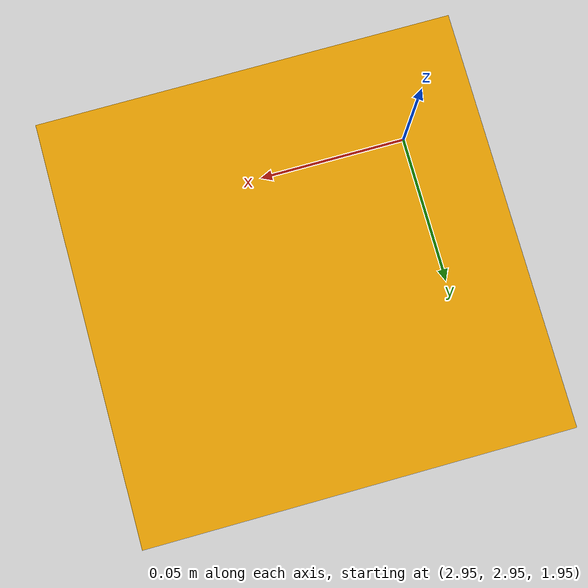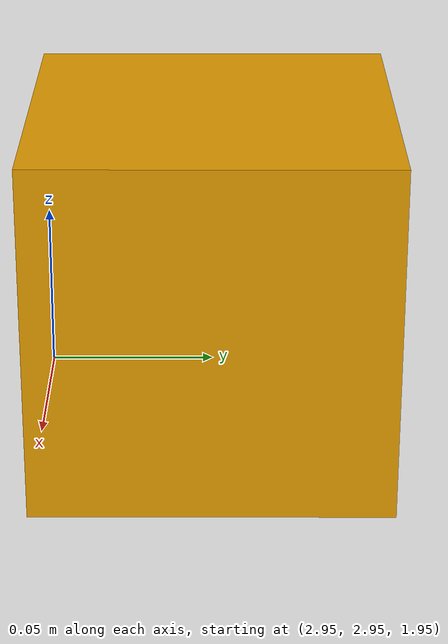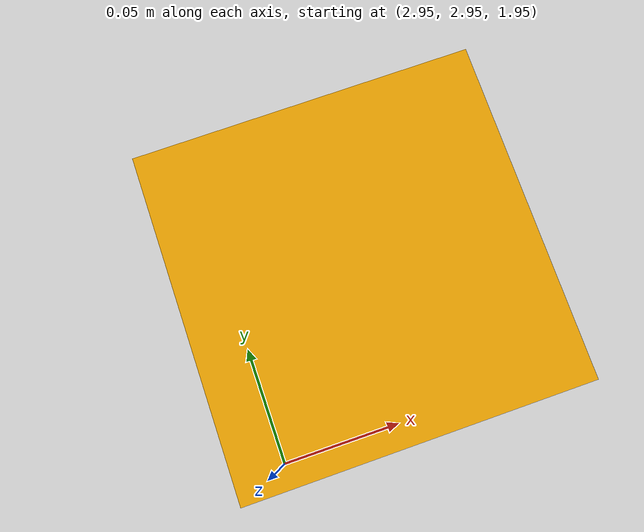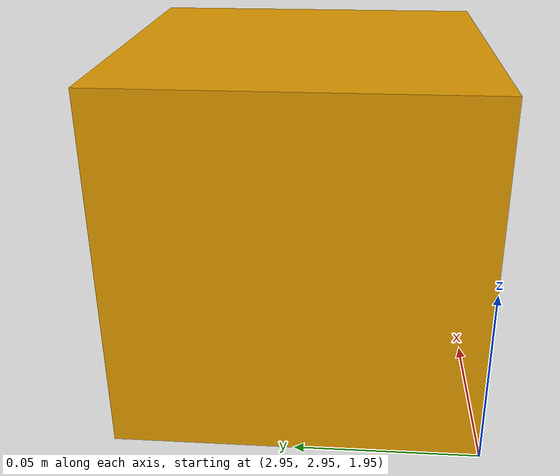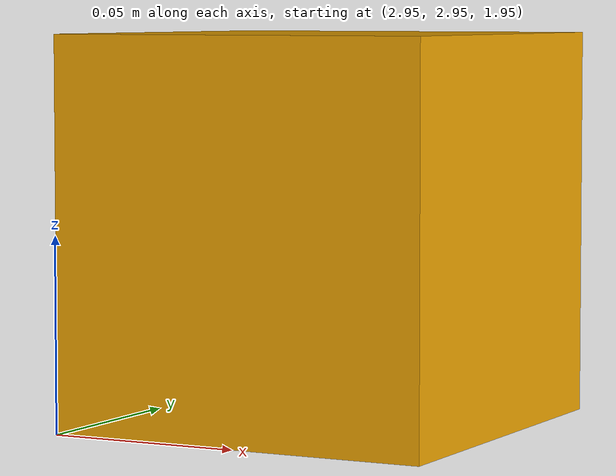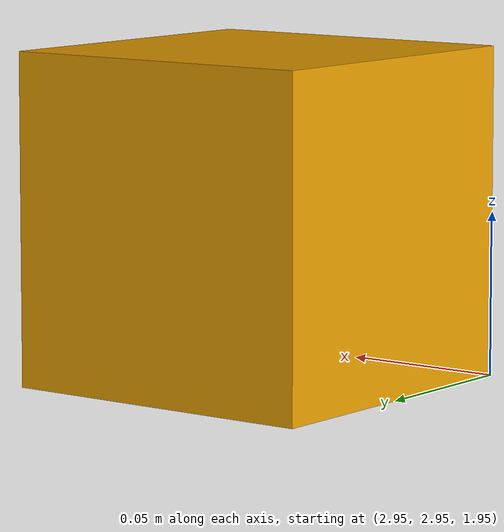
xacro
<?xml version="1.0"?>
<robot name="cs_test_box1" xmlns:xacro="http://www.ros.org/wiki/xacro">

<link name="cs_test_box1">
    <visual>
        <origin xyz="3 3 2" rpy="0 0 0"/>
      <geometry>
        <mesh filename="package://cs_test/models/box.dae" scale="0.1 0.1 0.1"/>
      </geometry>
    </visual>

    <collision name="box2">
        <origin xyz="3 3 2" rpy="0 0 0"/>
      <geometry>
        <mesh filename="package://cs_test/models/box.dae" scale="0.1 0.1 0.1"/>
      </geometry>
    </collision>

    <inertial>
        <origin xyz="3 3 2" rpy="0 0 0"/>
        <mass value="1"/>
        <inertia ixx="0.083"  ixy="0"  ixz="0" iyy="0.083" iyz="0" izz="0.083"/>
    </inertial>
</link>

<gazebo reference="cs_test_box2">
    <mu1 value="200" />
    <mu2 value="100" />
    <selfCollide>true</selfCollide>
</gazebo>

</robot>
